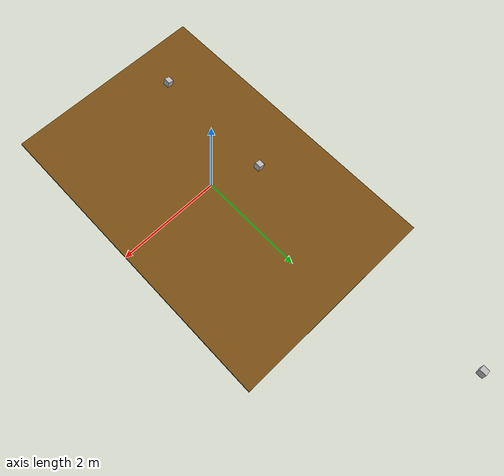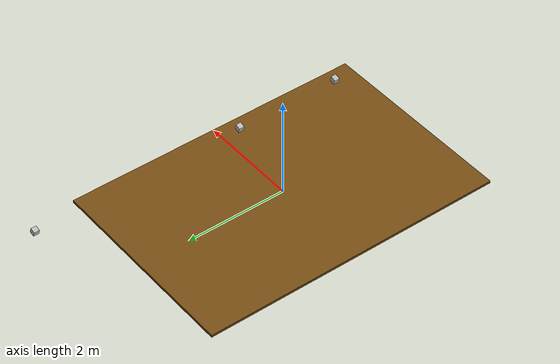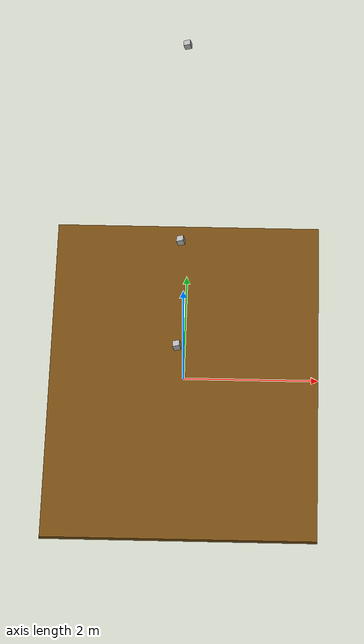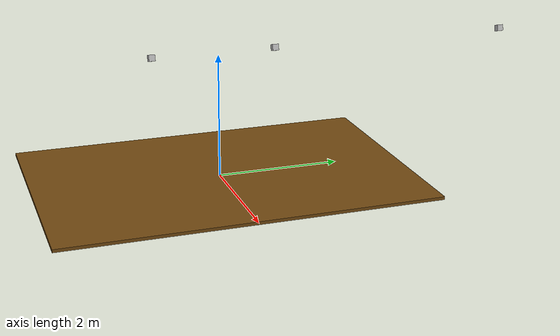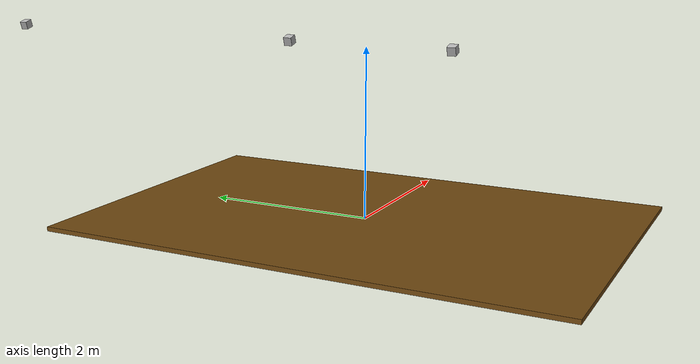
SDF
<sdf version="1.7">
 <world name="field">
  <physics name="1ms" type="ignored">
   <max_step_size>0.001</max_step_size>
   <real_time_factor>1.0</real_time_factor>
  </physics>
  <plugin filename="gz-sim-physics-system" name="gz::sim::systems::Physics"/>
  <plugin filename="gz-sim-sensors-system" name="gz::sim::systems::Sensors">
   <render_engine>ogre2</render_engine>
  </plugin>
  <plugin filename="gz-sim-user-commands-system" name="gz::sim::systems::UserCommands"/>
  <plugin filename="gz-sim-scene-broadcaster-system" name="gz::sim::systems::SceneBroadcaster"/>
  <light type="directional" name="sun">
   <pose>0 0 10 0 0 0</pose>
   <diffuse>0.8 0.8 0.8 1</diffuse>
   <specular>0.2 0.2 0.2 1</specular>
   <attenuation>
    <range>1000</range>
    <constant>0.9</constant>
    <linear>0.01</linear>
    <quadratic>0.001</quadratic>
   </attenuation>
   <direction>-0.5 0.1 -0.9</direction>
  </light>
  <model name="cameras_alone">
   <pose>0 1.0 2.0 0.0 0.3 3.14</pose>
   <link name="link">
    <pose>0.05 0.05 0.05 0 0 0</pose>
    <inertial>
     <mass>0.1</mass>
     <inertia><ixx>0.000166667</ixx><iyy>0.000166667</iyy><izz>0.000166667</izz></inertia>
    </inertial>
    <collision name="collision"><geometry><box><size>0.1 0.1 0.1</size></box></geometry></collision>
    <visual name="visual"><geometry><box><size>0.1 0.1 0.1</size></box></geometry></visual>
    <sensor name="cameras_alone" type="camera">
     <camera>
      <horizontal_fov>1.047</horizontal_fov>
      <image><width>320</width><height>240</height></image>
      <clip><near>0.1</near><far>100</far></clip>
     </camera>
     <always_on>1</always_on>
     <update_rate>30</update_rate>
     <visualize>true</visualize>
     <topic>camera_alone</topic>
     <enable_metrics>true</enable_metrics>
    </sensor>
    <sensor name="depth_camera1" type="depth_camera">
     <update_rate>10</update_rate>
     <topic>depth_camera</topic>
     <enable_metrics>true</enable_metrics>
     <camera>
      <horizontal_fov>1.05</horizontal_fov>
      <image><width>320</width><height>240</height><format>R_FLOAT32</format></image>
      <clip><near>0.1</near><far>10.0</far></clip>
     </camera>
    </sensor>
   </link>
   <static>true</static>
  </model>
  <model name="camera_with_lidar">
   <pose>0 -1.0 2.0 0.0 0.3 3.14</pose>
   <link name="link">
    <pose>0.05 0.05 0.05 0 0 0</pose>
    <inertial>
     <mass>0.1</mass>
     <inertia><ixx>0.000166667</ixx><iyy>0.000166667</iyy><izz>0.000166667</izz></inertia>
    </inertial>
    <collision name="collision"><geometry><box><size>0.1 0.1 0.1</size></box></geometry></collision>
    <visual name="visual"><geometry><box><size>0.1 0.1 0.1</size></box></geometry></visual>
    <sensor name="camera" type="camera">
     <camera>
      <horizontal_fov>1.047</horizontal_fov>
      <image><width>320</width><height>240</height></image>
      <clip><near>0.1</near><far>100</far></clip>
     </camera>
     <always_on>1</always_on>
     <update_rate>30</update_rate>
     <visualize>true</visualize>
     <topic>camera</topic>
    </sensor>
    <sensor name="gpu_lidar" type="gpu_lidar">
     <topic>lidar</topic>
     <update_rate>10</update_rate>
     <enable_metrics>true</enable_metrics>
     <ray>
      <scan>
       <horizontal>
        <samples>640</samples>
        <resolution>1</resolution>
        <min_angle>-1.396263</min_angle>
        <max_angle>1.396263</max_angle>
       </horizontal>
       <vertical>
        <samples>1</samples>
        <resolution>0.01</resolution>
        <min_angle>0</min_angle>
        <max_angle>0</max_angle>
       </vertical>
      </scan>
      <range><min>0.08</min><max>10.0</max><resolution>0.01</resolution></range>
     </ray>
     <alwaysOn>1</alwaysOn>
     <visualize>true</visualize>
    </sensor>
   </link>
   <static>true</static>
  </model>
  <model name="rgbd_camera">
   <pose>0 5.0 2.0 0.0 0.3 3.14</pose>
   <link name="link">
    <pose>0.05 0.05 0.05 0 0 0</pose>
    <inertial>
     <mass>0.1</mass>
     <inertia><ixx>0.000166667</ixx><iyy>0.000166667</iyy><izz>0.000166667</izz></inertia>
    </inertial>
    <collision name="collision"><geometry><box><size>0.1 0.1 0.1</size></box></geometry></collision>
    <visual name="visual"><geometry><box><size>0.1 0.1 0.1</size></box></geometry></visual>
    <sensor name="rgbd_camera" type="rgbd_camera">
     <camera>
      <horizontal_fov>1.047</horizontal_fov>
      <image><width>320</width><height>240</height></image>
      <clip><near>0.1</near><far>100</far></clip>
     </camera>
     <always_on>1</always_on>
     <update_rate>30</update_rate>
     <visualize>true</visualize>
     <topic>rgbd_camera</topic>
     <enable_metrics>true</enable_metrics>
    </sensor>
   </link>
  </model>
  <model name="ground_plane">
   <static>true</static>
   <link name="link">
    <collision name="collision"><geometry><box><size>4 6 0.05</size></box></geometry></collision>
    <visual name="visual">
     <geometry><box><size>4 6 0.05</size></box></geometry>
     <material>
      <ambient>0.45 0.29 0.07 1</ambient>
      <diffuse>0.45 0.29 0.07 1</diffuse>
      <specular>0.45 0.29 0.07 1</specular>
     </material>
    </visual>
   </link>
  </model>
 </world>
</sdf>
